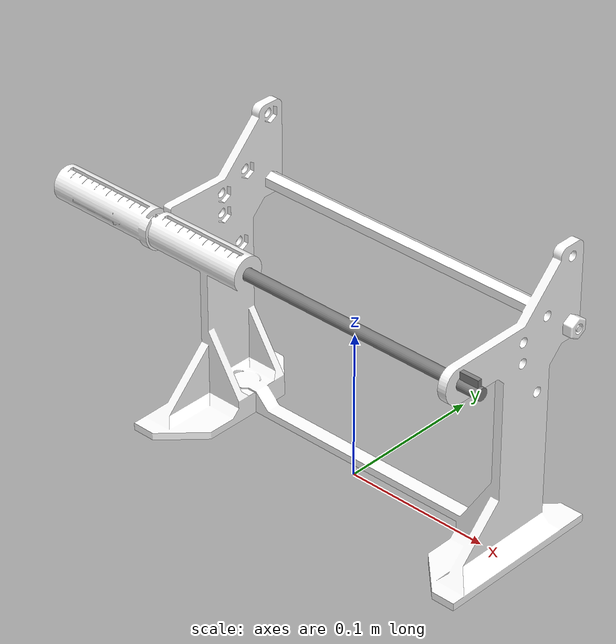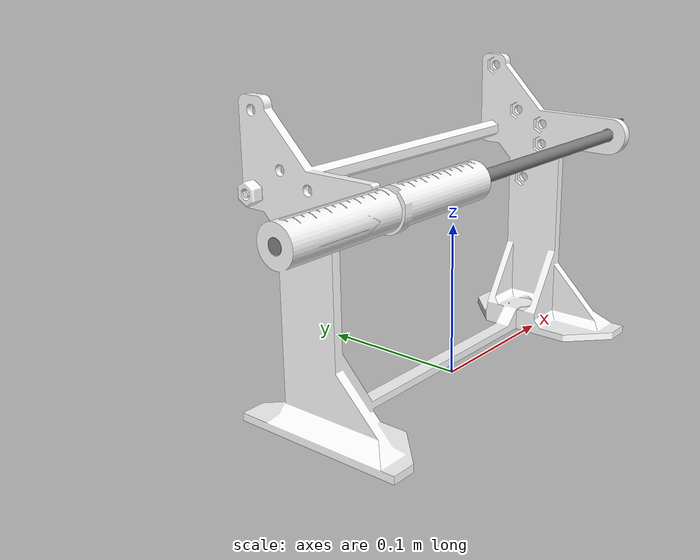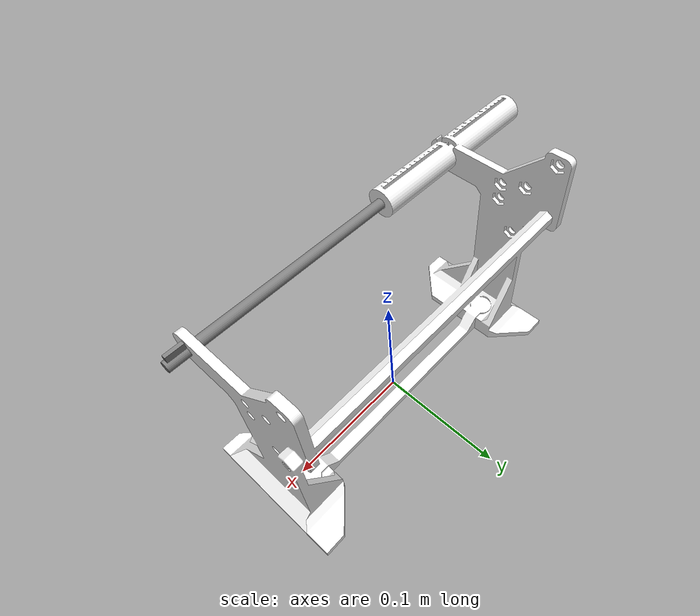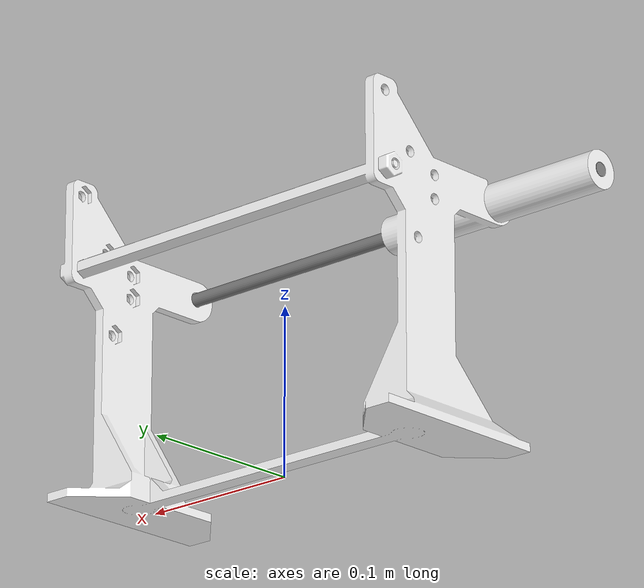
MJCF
<mujoco model="H4_Palmar_H5_Pinch">

  <asset>
    <mesh name="i131415_horizontal_base" file="i131415_horizontal_base.stl" scale="1 1 1"/>

    <material name="object_material" rgba="1 1 1 1" shininess="0.3"/>
  </asset>

  <default>
    <default class="visual">
      <geom contype="0" conaffinity="0" group="2"/>
    </default>
    <default class="collision">
      <geom group="3"/>
    </default>
  </default>

  <worldbody>

    <body name="i131415_horizontal_base_body" pos="0 0 0">
      <geom name="i131415_horizontal_base" type="mesh" mesh="i131415_horizontal_base" material="object_material" mass="1" class="visual"/>
      <geom type="box" size="0.003 0.020 0.0775" pos="-0.1155 -0.0118 0.0775" density="248" class="collision"/>
      <geom type="box" size="0.003 0.020 0.0775" pos="0.1155 -0.0118 0.0775" density="248" class="collision"/>
      <geom type="cylinder" size="0.01125 0.075" quat="0.7071068 0 0.7071068 0" pos="-0.1174 -0.04445 0.14375" density="248" class="collision"/>
      <body name="long_rod_body" pos="-0.1924 -0.04445 0.14375">
        <joint name="long_rod_slide" type="slide" axis="1 0 0" range="0 0.200" damping="0.02"/>
        <geom type="cylinder" size="0.004 0.16295" quat="0.7071068 0 0.7071068 0" pos="0.16295 0 0" density="24"/>
        <geom type="box" size="0.0065 0.0015 0.00435" pos="0.3174 0 0.00435" density="24"/>
      </body>
    </body>

  </worldbody>
</mujoco>
